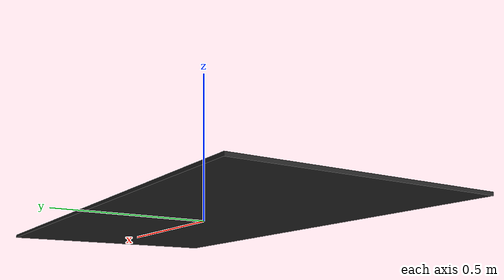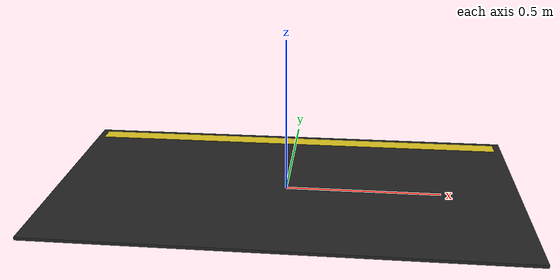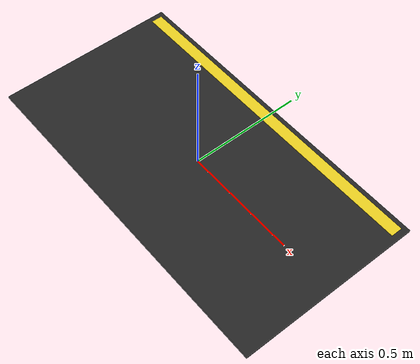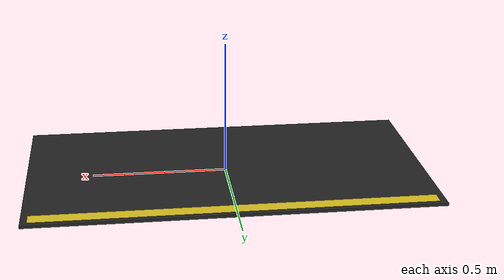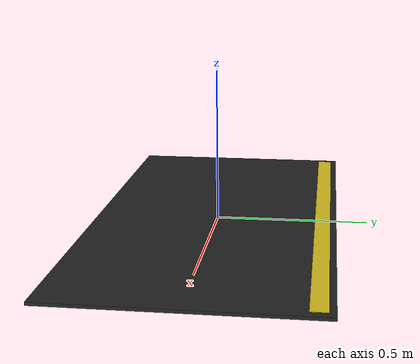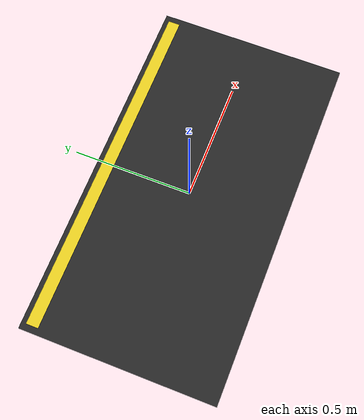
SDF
<sdf version="1.9">
  <model name="road_segment">
    <static>true</static>
    <link name="segment_link">
      <collision name="segment_collision">
        <pose>0 0 0.005 0 0 0</pose>
        <geometry>
          <box>
            <size>1.5 0.8 0.01</size>
          </box>
        </geometry>
      </collision>
      <visual name="segment_visual">
        <pose>0 0 0.005 0 0 0</pose>
        <geometry>
          <box>
            <size>1.5 0.8 0.01</size>
          </box>
        </geometry>
        <material>
          <ambient>0.14 0.14 0.14 1</ambient>
          <diffuse>0.14 0.14 0.14 1</diffuse>
          <specular>0.02 0.02 0.02 1</specular>
        </material>
      </visual>

      <!-- One-sided yellow strip near edge; pair two road segments to create middle separator -->
      <visual name="edge_yellow_strip_visual">
        <pose>0 0.355 0.011 0 0 0</pose>
        <geometry>
          <box>
            <size>1.45 0.05 0.002</size>
          </box>
        </geometry>
        <material>
          <ambient>0.88 0.78 0.12 1</ambient>
          <diffuse>0.88 0.78 0.12 1</diffuse>
          <specular>0.05 0.05 0.02 1</specular>
        </material>
      </visual>
    </link>
  </model>
</sdf>
